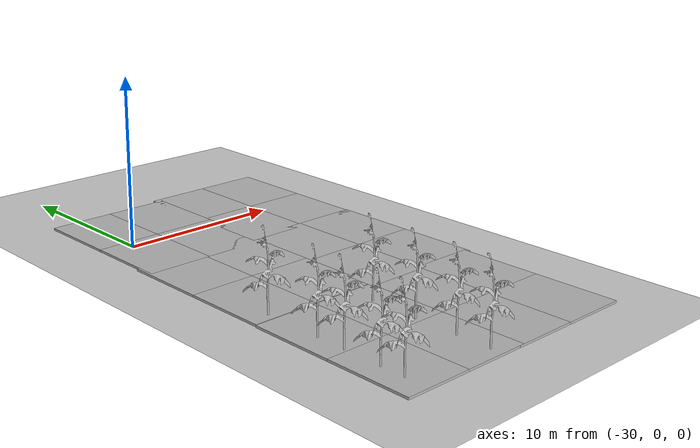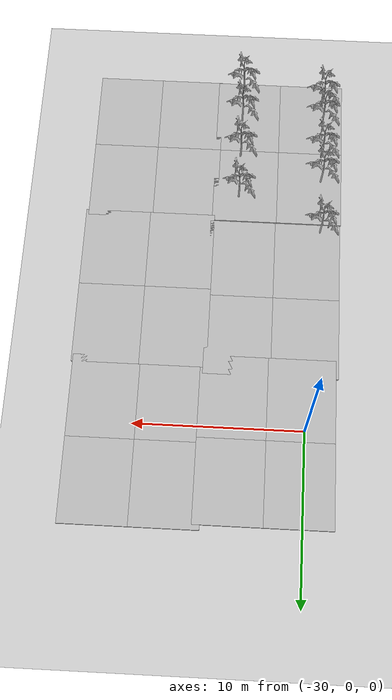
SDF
<sdf version="1.6">
 <world name="default">
  <light name="sun" type="directional">
   <pose>0 0 10 0 -0 0</pose>
   <diffuse>0.8 0.8 0.8 1</diffuse>
   <specular>0.2 0.2 0.2 1</specular>
   <attenuation>
    <range>1000</range>
    <constant>0.9</constant>
    <linear>0.01</linear>
    <quadratic>0.001</quadratic>
   </attenuation>
   <direction>-0.5 0.1 -0.9</direction>
  </light>
  <model name="ground_plane">
   <static>1</static>
   <link name="link">
    <collision name="collision">
     <geometry><plane><normal>0 0 1</normal><size>100 100</size></plane></geometry>
     <surface>
      <contact><collide_bitmask>65535</collide_bitmask></contact>
      <friction><ode><mu>100</mu><mu2>50</mu2></ode></friction>
     </surface>
    </collision>
    <visual name="visual">
     <cast_shadows>0</cast_shadows>
     <geometry><plane><normal>0 0 1</normal><size>100 100</size></plane></geometry>
     <material>
      <script><uri>file://media/materials/scripts/gazebo.material</uri><name>Gazebo/Grey</name></script>
     </material>
    </visual>
   </link>
  </model>
  <gravity>0 0 -9.8</gravity>
  <magnetic_field>6e-06 2.3e-05 -4.2e-05</magnetic_field>
  <atmosphere type="adiabatic"/>
  <physics name="default_physics" default="0" type="ode">
   <max_step_size>0.001</max_step_size>
   <real_time_factor>1</real_time_factor>
   <real_time_update_rate>1000</real_time_update_rate>
  </physics>
  <scene><ambient>0.4 0.4 0.4 1</ambient><background>0.7 0.7 0.7 1</background><shadows>1</shadows></scene>
  <audio><device>default</device></audio>
  <spherical_coordinates>
   <surface_model>EARTH_WGS84</surface_model>
   <latitude_deg>0</latitude_deg>
   <longitude_deg>0</longitude_deg>
   <elevation>0</elevation>
   <heading_deg>0</heading_deg>
  </spherical_coordinates>
  <model name="mud_box">
   <static>1</static>
   <link name="link">
    <collision name="collision"><geometry><box><size>80 100 0.2</size></box></geometry></collision>
    <visual name="visual_1">
     <pose>-2 2.5 0 0 -0 0</pose>
     <cast_shadows>0</cast_shadows>
     <geometry><box><size>4 5 0.2</size></box></geometry>
     <material>
      <script>
       <uri>model://mud_box/materials/scripts</uri>
       <uri>model://mud_box/materials/textures</uri>
       <name>vrc/mud</name>
      </script>
     </material>
    </visual>
    <visual name="visual_2">
     <pose>2 2.5 0 0 -0 0</pose>
     <cast_shadows>0</cast_shadows>
     <geometry><box><size>4 5 0.2</size></box></geometry>
     <material>
      <script>
       <uri>model://mud_box/materials/scripts</uri>
       <uri>model://mud_box/materials/textures</uri>
       <name>vrc/mud</name>
      </script>
     </material>
    </visual>
    <visual name="visual_3">
     <pose>2 -2.5 0 0 -0 0</pose>
     <cast_shadows>0</cast_shadows>
     <geometry><box><size>4 5 0.2</size></box></geometry>
     <material>
      <script>
       <uri>model://mud_box/materials/scripts</uri>
       <uri>model://mud_box/materials/textures</uri>
       <name>vrc/mud</name>
      </script>
     </material>
    </visual>
    <visual name="visual_4">
     <pose>-2 -2.5 0 0 -0 0</pose>
     <cast_shadows>0</cast_shadows>
     <geometry><box><size>4 5 0.2</size></box></geometry>
     <material>
      <script>
       <uri>model://mud_box/materials/scripts</uri>
       <uri>model://mud_box/materials/textures</uri>
       <name>vrc/mud</name>
      </script>
     </material>
    </visual>
   </link>
   <pose>-28.0054 -18.2834 0 0 -0 0</pose>
  </model>
  <model name="mud_box_clone">
   <static>1</static>
   <link name="link">
    <collision name="collision"><geometry><box><size>80 100 0.2</size></box></geometry></collision>
    <visual name="visual_1">
     <pose>-2 2.5 0 0 -0 0</pose>
     <cast_shadows>0</cast_shadows>
     <geometry><box><size>4 5 0.2</size></box></geometry>
     <material>
      <script>
       <uri>model://mud_box/materials/scripts</uri>
       <uri>model://mud_box/materials/textures</uri>
       <name>vrc/mud</name>
      </script>
     </material>
    </visual>
    <visual name="visual_2">
     <pose>2 2.5 0 0 -0 0</pose>
     <cast_shadows>0</cast_shadows>
     <geometry><box><size>4 5 0.2</size></box></geometry>
     <material>
      <script>
       <uri>model://mud_box/materials/scripts</uri>
       <uri>model://mud_box/materials/textures</uri>
       <name>vrc/mud</name>
      </script>
     </material>
    </visual>
    <visual name="visual_3">
     <pose>2 -2.5 0 0 -0 0</pose>
     <cast_shadows>0</cast_shadows>
     <geometry><box><size>4 5 0.2</size></box></geometry>
     <material>
      <script>
       <uri>model://mud_box/materials/scripts</uri>
       <uri>model://mud_box/materials/textures</uri>
       <name>vrc/mud</name>
      </script>
     </material>
    </visual>
    <visual name="visual_4">
     <pose>-2 -2.5 0 0 -0 0</pose>
     <cast_shadows>0</cast_shadows>
     <geometry><box><size>4 5 0.2</size></box></geometry>
     <material>
      <script>
       <uri>model://mud_box/materials/scripts</uri>
       <uri>model://mud_box/materials/textures</uri>
       <name>vrc/mud</name>
      </script>
     </material>
    </visual>
   </link>
   <pose>-27.9427 -8.22793 0 0 -0 0</pose>
  </model>
  <model name="mud_box_clone_0">
   <static>1</static>
   <link name="link">
    <collision name="collision"><geometry><box><size>80 100 0.2</size></box></geometry></collision>
    <visual name="visual_1">
     <pose>-2 2.5 0 0 -0 0</pose>
     <cast_shadows>0</cast_shadows>
     <geometry><box><size>4 5 0.2</size></box></geometry>
     <material>
      <script>
       <uri>model://mud_box/materials/scripts</uri>
       <uri>model://mud_box/materials/textures</uri>
       <name>vrc/mud</name>
      </script>
     </material>
    </visual>
    <visual name="visual_2">
     <pose>2 2.5 0 0 -0 0</pose>
     <cast_shadows>0</cast_shadows>
     <geometry><box><size>4 5 0.2</size></box></geometry>
     <material>
      <script>
       <uri>model://mud_box/materials/scripts</uri>
       <uri>model://mud_box/materials/textures</uri>
       <name>vrc/mud</name>
      </script>
     </material>
    </visual>
    <visual name="visual_3">
     <pose>2 -2.5 0 0 -0 0</pose>
     <cast_shadows>0</cast_shadows>
     <geometry><box><size>4 5 0.2</size></box></geometry>
     <material>
      <script>
       <uri>model://mud_box/materials/scripts</uri>
       <uri>model://mud_box/materials/textures</uri>
       <name>vrc/mud</name>
      </script>
     </material>
    </visual>
    <visual name="visual_4">
     <pose>-2 -2.5 0 0 -0 0</pose>
     <cast_shadows>0</cast_shadows>
     <geometry><box><size>4 5 0.2</size></box></geometry>
     <material>
      <script>
       <uri>model://mud_box/materials/scripts</uri>
       <uri>model://mud_box/materials/textures</uri>
       <name>vrc/mud</name>
      </script>
     </material>
    </visual>
   </link>
   <pose>-20.3017 -18.2945 0 0 -0 0</pose>
  </model>
  <model name="mud_box_clone_1">
   <static>1</static>
   <link name="link">
    <collision name="collision"><geometry><box><size>80 100 0.2</size></box></geometry></collision>
    <visual name="visual_1">
     <pose>-2 2.5 0 0 -0 0</pose>
     <cast_shadows>0</cast_shadows>
     <geometry><box><size>4 5 0.2</size></box></geometry>
     <material>
      <script>
       <uri>model://mud_box/materials/scripts</uri>
       <uri>model://mud_box/materials/textures</uri>
       <name>vrc/mud</name>
      </script>
     </material>
    </visual>
    <visual name="visual_2">
     <pose>2 2.5 0 0 -0 0</pose>
     <cast_shadows>0</cast_shadows>
     <geometry><box><size>4 5 0.2</size></box></geometry>
     <material>
      <script>
       <uri>model://mud_box/materials/scripts</uri>
       <uri>model://mud_box/materials/textures</uri>
       <name>vrc/mud</name>
      </script>
     </material>
    </visual>
    <visual name="visual_3">
     <pose>2 -2.5 0 0 -0 0</pose>
     <cast_shadows>0</cast_shadows>
     <geometry><box><size>4 5 0.2</size></box></geometry>
     <material>
      <script>
       <uri>model://mud_box/materials/scripts</uri>
       <uri>model://mud_box/materials/textures</uri>
       <name>vrc/mud</name>
      </script>
     </material>
    </visual>
    <visual name="visual_4">
     <pose>-2 -2.5 0 0 -0 0</pose>
     <cast_shadows>0</cast_shadows>
     <geometry><box><size>4 5 0.2</size></box></geometry>
     <material>
      <script>
       <uri>model://mud_box/materials/scripts</uri>
       <uri>model://mud_box/materials/textures</uri>
       <name>vrc/mud</name>
      </script>
     </material>
    </visual>
   </link>
   <pose>-20.1605 -8.60733 0 0 -0 0</pose>
  </model>
  <model name="mud_box_clone_2">
   <static>1</static>
   <link name="link">
    <collision name="collision"><geometry><box><size>80 100 0.2</size></box></geometry></collision>
    <visual name="visual_1">
     <pose>-2 2.5 0 0 -0 0</pose>
     <cast_shadows>0</cast_shadows>
     <geometry><box><size>4 5 0.2</size></box></geometry>
     <material>
      <script>
       <uri>model://mud_box/materials/scripts</uri>
       <uri>model://mud_box/materials/textures</uri>
       <name>vrc/mud</name>
      </script>
     </material>
    </visual>
    <visual name="visual_2">
     <pose>2 2.5 0 0 -0 0</pose>
     <cast_shadows>0</cast_shadows>
     <geometry><box><size>4 5 0.2</size></box></geometry>
     <material>
      <script>
       <uri>model://mud_box/materials/scripts</uri>
       <uri>model://mud_box/materials/textures</uri>
       <name>vrc/mud</name>
      </script>
     </material>
    </visual>
    <visual name="visual_3">
     <pose>2 -2.5 0 0 -0 0</pose>
     <cast_shadows>0</cast_shadows>
     <geometry><box><size>4 5 0.2</size></box></geometry>
     <material>
      <script>
       <uri>model://mud_box/materials/scripts</uri>
       <uri>model://mud_box/materials/textures</uri>
       <name>vrc/mud</name>
      </script>
     </material>
    </visual>
    <visual name="visual_4">
     <pose>-2 -2.5 0 0 -0 0</pose>
     <cast_shadows>0</cast_shadows>
     <geometry><box><size>4 5 0.2</size></box></geometry>
     <material>
      <script>
       <uri>model://mud_box/materials/scripts</uri>
       <uri>model://mud_box/materials/textures</uri>
       <name>vrc/mud</name>
      </script>
     </material>
    </visual>
   </link>
   <pose>-20.2523 0.943673 0 0 -0 0</pose>
  </model>
  <model name="mud_box_clone_3">
   <static>1</static>
   <link name="link">
    <collision name="collision"><geometry><box><size>80 100 0.2</size></box></geometry></collision>
    <visual name="visual_1">
     <pose>-2 2.5 0 0 -0 0</pose>
     <cast_shadows>0</cast_shadows>
     <geometry><box><size>4 5 0.2</size></box></geometry>
     <material>
      <script>
       <uri>model://mud_box/materials/scripts</uri>
       <uri>model://mud_box/materials/textures</uri>
       <name>vrc/mud</name>
      </script>
     </material>
    </visual>
    <visual name="visual_2">
     <pose>2 2.5 0 0 -0 0</pose>
     <cast_shadows>0</cast_shadows>
     <geometry><box><size>4 5 0.2</size></box></geometry>
     <material>
      <script>
       <uri>model://mud_box/materials/scripts</uri>
       <uri>model://mud_box/materials/textures</uri>
       <name>vrc/mud</name>
      </script>
     </material>
    </visual>
    <visual name="visual_3">
     <pose>2 -2.5 0 0 -0 0</pose>
     <cast_shadows>0</cast_shadows>
     <geometry><box><size>4 5 0.2</size></box></geometry>
     <material>
      <script>
       <uri>model://mud_box/materials/scripts</uri>
       <uri>model://mud_box/materials/textures</uri>
       <name>vrc/mud</name>
      </script>
     </material>
    </visual>
    <visual name="visual_4">
     <pose>-2 -2.5 0 0 -0 0</pose>
     <cast_shadows>0</cast_shadows>
     <geometry><box><size>4 5 0.2</size></box></geometry>
     <material>
      <script>
       <uri>model://mud_box/materials/scripts</uri>
       <uri>model://mud_box/materials/textures</uri>
       <name>vrc/mud</name>
      </script>
     </material>
    </visual>
   </link>
   <pose>-27.8013 0.634748 0 0 -0 0</pose>
  </model>
  <model name="tomato_plant">
   <static>1</static>
   <link name="link">
    <collision name="collision">
     <geometry>
      <mesh><scale>1e-06 1e-06 1e-06</scale><uri>model://tomato_plant/meshes/tomato-plant.dae</uri></mesh>
     </geometry>
    </collision>
    <visual name="visual">
     <geometry>
      <mesh><scale>1e-05 1e-05 1.5e-05</scale><uri>model://tomato_plant/meshes/tomato-plant.dae</uri></mesh>
     </geometry>
    </visual>
   </link>
   <pose>-30.7003 -21.9007 0 0 -0 0</pose>
  </model>
  <model name="tomato_plant_clone">
   <static>1</static>
   <link name="link">
    <collision name="collision">
     <geometry>
      <mesh><scale>1e-06 1e-06 1e-06</scale><uri>model://tomato_plant/meshes/tomato-plant.dae</uri></mesh>
     </geometry>
    </collision>
    <visual name="visual">
     <geometry>
      <mesh><scale>1e-05 1e-05 1.5e-05</scale><uri>model://tomato_plant/meshes/tomato-plant.dae</uri></mesh>
     </geometry>
    </visual>
   </link>
   <pose>-30.7003 -20.4473 0 0 -0 0</pose>
  </model>
  <model name="tomato_plant_clone_0">
   <static>1</static>
   <link name="link">
    <collision name="collision">
     <geometry>
      <mesh><scale>1e-06 1e-06 1e-06</scale><uri>model://tomato_plant/meshes/tomato-plant.dae</uri></mesh>
     </geometry>
    </collision>
    <visual name="visual">
     <geometry>
      <mesh><scale>1e-05 1e-05 1.5e-05</scale><uri>model://tomato_plant/meshes/tomato-plant.dae</uri></mesh>
     </geometry>
    </visual>
   </link>
   <pose>-30.7003 -18.1249 0 0 -0 0</pose>
  </model>
  <model name="tomato_plant_clone_1">
   <static>1</static>
   <link name="link">
    <collision name="collision">
     <geometry>
      <mesh><scale>1e-06 1e-06 1e-06</scale><uri>model://tomato_plant/meshes/tomato-plant.dae</uri></mesh>
     </geometry>
    </collision>
    <visual name="visual">
     <geometry>
      <mesh><scale>1e-05 1e-05 1.5e-05</scale><uri>model://tomato_plant/meshes/tomato-plant.dae</uri></mesh>
     </geometry>
    </visual>
   </link>
   <pose>-30.7003 -16.3348 0 0 -0 0</pose>
  </model>
  <model name="tomato_plant_clone_2">
   <static>1</static>
   <link name="link">
    <collision name="collision">
     <geometry>
      <mesh><scale>1e-06 1e-06 1e-06</scale><uri>model://tomato_plant/meshes/tomato-plant.dae</uri></mesh>
     </geometry>
    </collision>
    <visual name="visual">
     <geometry>
      <mesh><scale>1e-05 1e-05 1.5e-05</scale><uri>model://tomato_plant/meshes/tomato-plant.dae</uri></mesh>
     </geometry>
    </visual>
   </link>
   <pose>-30.7003 -12.7766 0 0 -0 0</pose>
  </model>
  <model name="tomato_plant_clone_3">
   <static>1</static>
   <link name="link">
    <collision name="collision">
     <geometry>
      <mesh><scale>1e-06 1e-06 1e-06</scale><uri>model://tomato_plant/meshes/tomato-plant.dae</uri></mesh>
     </geometry>
    </collision>
    <visual name="visual">
     <geometry>
      <mesh><scale>1e-05 1e-05 1.5e-05</scale><uri>model://tomato_plant/meshes/tomato-plant.dae</uri></mesh>
     </geometry>
    </visual>
   </link>
   <pose>-25.5794 -22.6044 0 0 -0 0</pose>
  </model>
  <model name="tomato_plant_clone_4">
   <static>1</static>
   <link name="link">
    <collision name="collision">
     <geometry>
      <mesh><scale>1e-06 1e-06 1e-06</scale><uri>model://tomato_plant/meshes/tomato-plant.dae</uri></mesh>
     </geometry>
    </collision>
    <visual name="visual">
     <geometry>
      <mesh><scale>1e-05 1e-05 1.5e-05</scale><uri>model://tomato_plant/meshes/tomato-plant.dae</uri></mesh>
     </geometry>
    </visual>
   </link>
   <pose>-25.5794 -20.5634 0 0 -0 0</pose>
  </model>
  <model name="tomato_plant_clone_5">
   <static>1</static>
   <link name="link">
    <collision name="collision">
     <geometry>
      <mesh><scale>1e-06 1e-06 1e-06</scale><uri>model://tomato_plant/meshes/tomato-plant.dae</uri></mesh>
     </geometry>
    </collision>
    <visual name="visual">
     <geometry>
      <mesh><scale>1e-05 1e-05 1.5e-05</scale><uri>model://tomato_plant/meshes/tomato-plant.dae</uri></mesh>
     </geometry>
    </visual>
   </link>
   <pose>-25.5794 -17.9456 0 0 -0 0</pose>
  </model>
  <model name="tomato_plant_clone_6">
   <static>1</static>
   <link name="link">
    <collision name="collision">
     <geometry>
      <mesh><scale>1e-06 1e-06 1e-06</scale><uri>model://tomato_plant/meshes/tomato-plant.dae</uri></mesh>
     </geometry>
    </collision>
    <visual name="visual">
     <geometry>
      <mesh><scale>1e-05 1e-05 1.5e-05</scale><uri>model://tomato_plant/meshes/tomato-plant.dae</uri></mesh>
     </geometry>
    </visual>
   </link>
   <pose>-25.5794 -15.0315 0 0 -0 0</pose>
  </model>
 </world>
</sdf>
